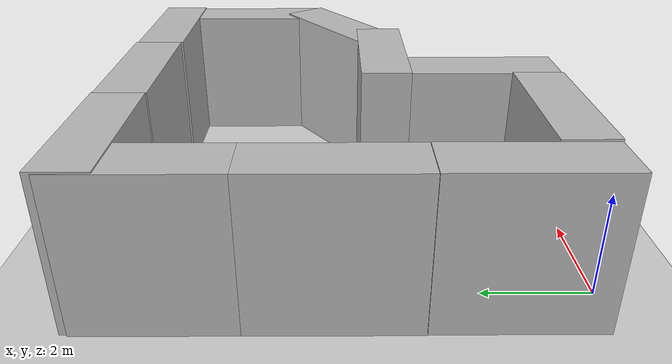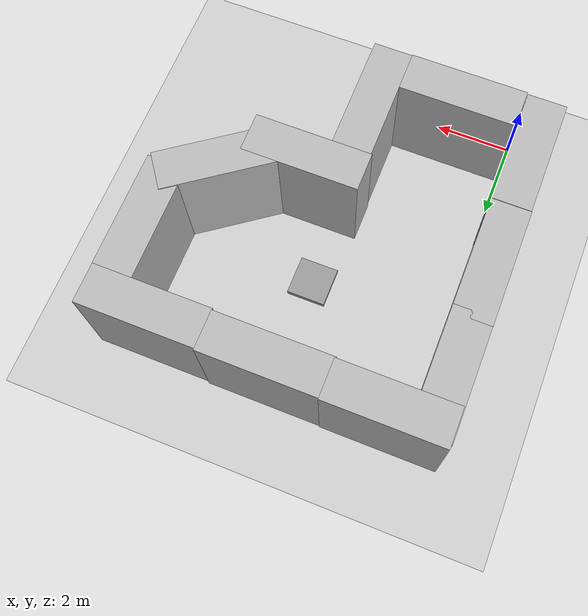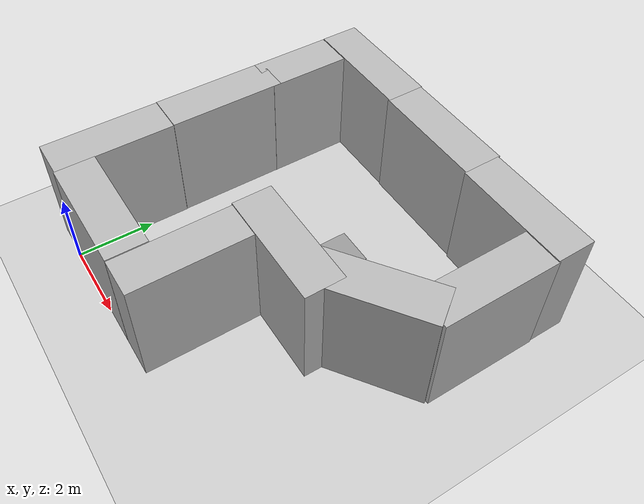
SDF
<sdf version="1.6">
 <world name="default">
  <light name="sun" type="directional">
   <pose>0 0 10 0 -0 0</pose>
   <diffuse>0.8 0.8 0.8 1</diffuse>
   <specular>0.2 0.2 0.2 1</specular>
   <attenuation>
    <range>1000</range>
    <constant>0.9</constant>
    <linear>0.01</linear>
    <quadratic>0.001</quadratic>
   </attenuation>
   <direction>-0.5 0.1 -0.9</direction>
  </light>
  <model name="ground_plane">
   <static>1</static>
   <link name="link">
    <collision name="collision">
     <geometry><plane><normal>0 0 1</normal><size>100 100</size></plane></geometry>
     <surface>
      <contact><collide_bitmask>65535</collide_bitmask></contact>
      <friction><ode><mu>100</mu><mu2>50</mu2></ode></friction>
     </surface>
    </collision>
    <visual name="visual">
     <cast_shadows>0</cast_shadows>
     <geometry><plane><normal>0 0 1</normal><size>100 100</size></plane></geometry>
     <material>
      <script><uri>file://media/materials/scripts/gazebo.material</uri><name>Gazebo/Grey</name></script>
     </material>
    </visual>
   </link>
  </model>
  <gravity>0 0 -9.8</gravity>
  <magnetic_field>6e-06 2.3e-05 -4.2e-05</magnetic_field>
  <atmosphere type="adiabatic"/>
  <physics name="default_physics" default="0" type="ode">
   <max_step_size>0.001</max_step_size>
   <real_time_factor>1</real_time_factor>
   <real_time_update_rate>1000</real_time_update_rate>
  </physics>
  <scene><ambient>0.4 0.4 0.4 1</ambient><background>0.7 0.7 0.7 1</background><shadows>1</shadows></scene>
  <spherical_coordinates>
   <surface_model>EARTH_WGS84</surface_model>
   <latitude_deg>0</latitude_deg>
   <longitude_deg>0</longitude_deg>
   <elevation>0</elevation>
   <heading_deg>0</heading_deg>
  </spherical_coordinates>
  <model name="brick_box_3x1x3">
   <static>1</static>
   <link name="chassis">
    <pose>0 0 1.5 0 -0 0</pose>
    <collision name="collision"><geometry><box><size>3 1 3</size></box></geometry></collision>
    <visual name="visual">
     <geometry><mesh><uri>model://brick_box_3x1x3/meshes/simple_box.dae</uri><scale>3 1 3</scale></mesh></geometry>
     <material>
      <script>
       <uri>model://brick_box_3x1x3/materials/scripts</uri>
       <uri>model://brick_box_3x1x3/materials/textures</uri>
       <name>BrickBox/Diffuse</name>
      </script>
     </material>
    </visual>
   </link>
   <pose>1.51624 0.50191 0 0 -0 0</pose>
  </model>
  <model name="brick_box_3x1x3_0">
   <static>1</static>
   <link name="chassis">
    <pose>0 0 1.5 0 -0 0</pose>
    <collision name="collision"><geometry><box><size>3 1 3</size></box></geometry></collision>
    <visual name="visual">
     <geometry><mesh><uri>model://brick_box_3x1x3/meshes/simple_box.dae</uri><scale>3 1 3</scale></mesh></geometry>
     <material>
      <script>
       <uri>model://brick_box_3x1x3/materials/scripts</uri>
       <uri>model://brick_box_3x1x3/materials/textures</uri>
       <name>BrickBox/Diffuse</name>
      </script>
     </material>
    </visual>
   </link>
   <pose>3.51375 1.50393 -0.02794 0 -0 1.5708</pose>
  </model>
  <model name="brick_box_3x1x3_0_clone">
   <static>1</static>
   <link name="chassis">
    <pose>0 0 1.5 0 -0 0</pose>
    <collision name="collision"><geometry><box><size>3 1 3</size></box></geometry></collision>
    <visual name="visual">
     <geometry><mesh><uri>model://brick_box_3x1x3/meshes/simple_box.dae</uri><scale>3 1 3</scale></mesh></geometry>
     <material>
      <script>
       <uri>model://brick_box_3x1x3/materials/scripts</uri>
       <uri>model://brick_box_3x1x3/materials/textures</uri>
       <name>BrickBox/Diffuse</name>
      </script>
     </material>
    </visual>
   </link>
   <pose>-0.499565 1.52608 -0.02794 0 -0 1.5708</pose>
  </model>
  <model name="brick_box_3x1x3_0_clone_0_clone">
   <static>1</static>
   <link name="chassis">
    <pose>0 0 1.5 0 -0 0</pose>
    <collision name="collision"><geometry><box><size>3 1 3</size></box></geometry></collision>
    <visual name="visual">
     <geometry><mesh><uri>model://brick_box_3x1x3/meshes/simple_box.dae</uri><scale>3 1 3</scale></mesh></geometry>
     <material>
      <script>
       <uri>model://brick_box_3x1x3/materials/scripts</uri>
       <uri>model://brick_box_3x1x3/materials/textures</uri>
       <name>BrickBox/Diffuse</name>
      </script>
     </material>
    </visual>
   </link>
   <pose>-0.512056 4.53453 -0.02794 0 -0 1.5708</pose>
  </model>
  <model name="brick_box_3x1x3_clone">
   <static>1</static>
   <link name="chassis">
    <pose>0 0 1.5 0 -0 0</pose>
    <collision name="collision"><geometry><box><size>3 1 3</size></box></geometry></collision>
    <visual name="visual">
     <geometry><mesh><uri>model://brick_box_3x1x3/meshes/simple_box.dae</uri><scale>3 1 3</scale></mesh></geometry>
     <material>
      <script>
       <uri>model://brick_box_3x1x3/materials/scripts</uri>
       <uri>model://brick_box_3x1x3/materials/textures</uri>
       <name>BrickBox/Diffuse</name>
      </script>
     </material>
    </visual>
   </link>
   <pose>4.48221 3.48591 0 0 -0 0</pose>
  </model>
  <model name="brick_box_3x1x3_clone_clone">
   <static>1</static>
   <link name="chassis">
    <pose>0 0 1.5 0 -0 0</pose>
    <collision name="collision"><geometry><box><size>3 1 3</size></box></geometry></collision>
    <visual name="visual">
     <geometry><mesh><uri>model://brick_box_3x1x3/meshes/simple_box.dae</uri><scale>3 1 3</scale></mesh></geometry>
     <material>
      <script>
       <uri>model://brick_box_3x1x3/materials/scripts</uri>
       <uri>model://brick_box_3x1x3/materials/textures</uri>
       <name>BrickBox/Diffuse</name>
      </script>
     </material>
    </visual>
   </link>
   <pose>3.4728 8.44759 0 0 -0 0</pose>
  </model>
  <model name="brick_box_3x1x3_clone_clone_0">
   <static>1</static>
   <link name="chassis">
    <pose>0 0 1.5 0 -0 0</pose>
    <collision name="collision"><geometry><box><size>3 1 3</size></box></geometry></collision>
    <visual name="visual">
     <geometry><mesh><uri>model://brick_box_3x1x3/meshes/simple_box.dae</uri><scale>3 1 3</scale></mesh></geometry>
     <material>
      <script>
       <uri>model://brick_box_3x1x3/materials/scripts</uri>
       <uri>model://brick_box_3x1x3/materials/textures</uri>
       <name>BrickBox/Diffuse</name>
      </script>
     </material>
    </visual>
   </link>
   <pose>0.513906 8.47021 0 0 -0 0</pose>
  </model>
  <model name="brick_box_3x1x3_clone_clone_1">
   <static>1</static>
   <link name="chassis">
    <pose>0 0 1.5 0 -0 0</pose>
    <collision name="collision"><geometry><box><size>3 1 3</size></box></geometry></collision>
    <visual name="visual">
     <geometry><mesh><uri>model://brick_box_3x1x3/meshes/simple_box.dae</uri><scale>3 1 3</scale></mesh></geometry>
     <material>
      <script>
       <uri>model://brick_box_3x1x3/materials/scripts</uri>
       <uri>model://brick_box_3x1x3/materials/textures</uri>
       <name>BrickBox/Diffuse</name>
      </script>
     </material>
    </visual>
   </link>
   <pose>6.43141 4.39378 0 0 -0 0.627758</pose>
  </model>
  <model name="brick_box_3x1x3_clone_clone_clone">
   <static>1</static>
   <link name="chassis">
    <pose>0 0 1.5 0 -0 0</pose>
    <collision name="collision"><geometry><box><size>3 1 3</size></box></geometry></collision>
    <visual name="visual">
     <geometry><mesh><uri>model://brick_box_3x1x3/meshes/simple_box.dae</uri><scale>3 1 3</scale></mesh></geometry>
     <material>
      <script>
       <uri>model://brick_box_3x1x3/materials/scripts</uri>
       <uri>model://brick_box_3x1x3/materials/textures</uri>
       <name>BrickBox/Diffuse</name>
      </script>
     </material>
    </visual>
   </link>
   <pose>6.45919 8.40915 0 0 -0 0</pose>
  </model>
  <model name="brick_box_3x1x3_0_clone_0_clone_clone_0">
   <static>1</static>
   <link name="chassis">
    <pose>0 0 1.5 0 -0 0</pose>
    <collision name="collision"><geometry><box><size>3 1 3</size></box></geometry></collision>
    <visual name="visual">
     <geometry><mesh><uri>model://brick_box_3x1x3/meshes/simple_box.dae</uri><scale>3 1 3</scale></mesh></geometry>
     <material>
      <script>
       <uri>model://brick_box_3x1x3/materials/scripts</uri>
       <uri>model://brick_box_3x1x3/materials/textures</uri>
       <name>BrickBox/Diffuse</name>
      </script>
     </material>
    </visual>
   </link>
   <pose>-0.508237 7.33465 -0.02794 0 -0 1.5708</pose>
  </model>
  <model name="brick_box_3x1x3_0_clone_0_clone_clone">
   <static>1</static>
   <link name="chassis">
    <pose>0 0 1.5 0 -0 0</pose>
    <collision name="collision"><geometry><box><size>3 1 3</size></box></geometry></collision>
    <visual name="visual">
     <geometry><mesh><uri>model://brick_box_3x1x3/meshes/simple_box.dae</uri><scale>3 1 3</scale></mesh></geometry>
     <material>
      <script>
       <uri>model://brick_box_3x1x3/materials/scripts</uri>
       <uri>model://brick_box_3x1x3/materials/textures</uri>
       <name>BrickBox/Diffuse</name>
      </script>
     </material>
    </visual>
   </link>
   <pose>7.47737 6.43251 -0.02794 0 -0 1.5708</pose>
  </model>
  <model name="unit_box">
   <pose>3.55173 5.54403 0.074012 0 -0 0</pose>
   <link name="link">
    <inertial>
     <mass>1</mass>
     <inertia>
      <ixx>0.166667</ixx>
      <ixy>0</ixy>
      <ixz>0</ixz>
      <iyy>0.166667</iyy>
      <iyz>0</iyz>
      <izz>0.166667</izz>
     </inertia>
    </inertial>
    <collision name="collision"><geometry><box><size>1 1 0.148025</size></box></geometry></collision>
    <visual name="visual">
     <geometry><box><size>1 1 0.148025</size></box></geometry>
     <material>
      <script><name>Gazebo/Grey</name><uri>file://media/materials/scripts/gazebo.material</uri></script>
     </material>
    </visual>
   </link>
  </model>
 </world>
</sdf>
